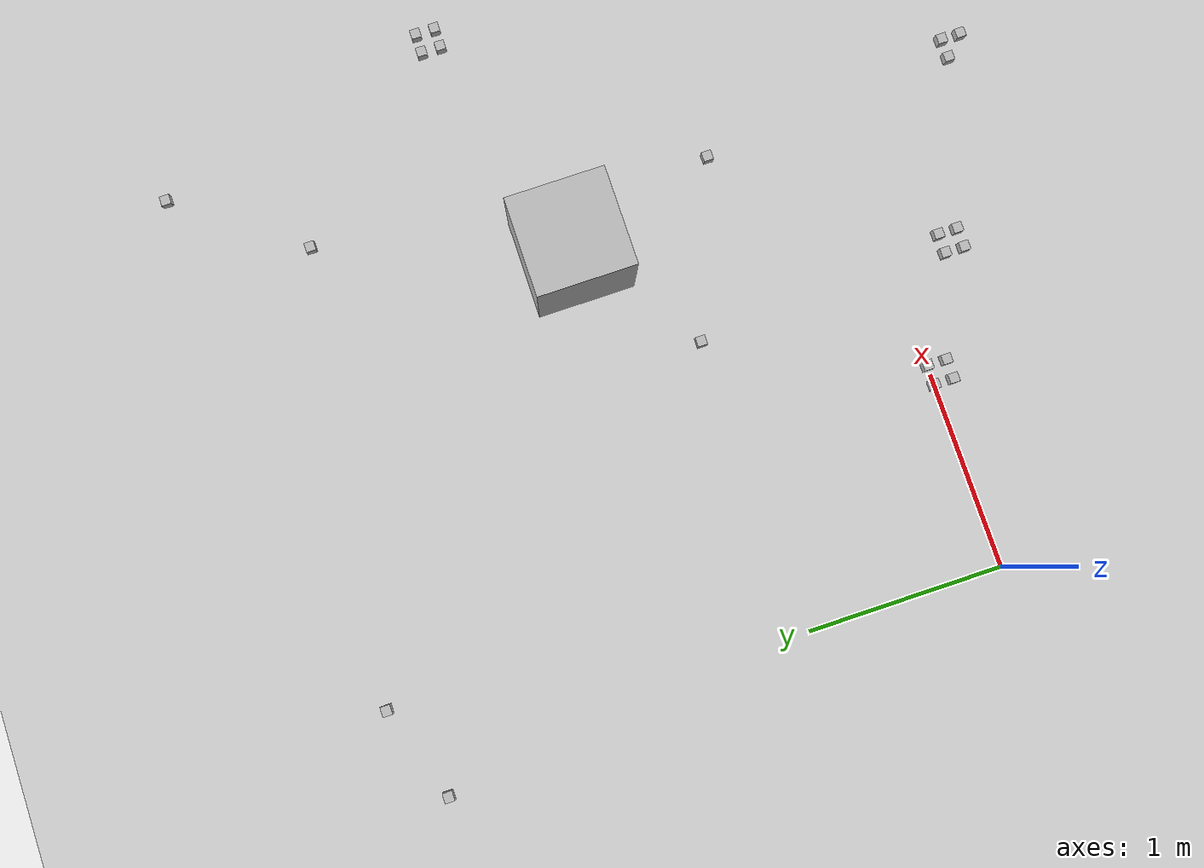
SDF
<sdf version="1.6">
 <world name="default">
  <model name="ground_plane">
   <static>1</static>
   <link name="link">
    <collision name="collision">
     <geometry><plane><normal>0 0 1</normal><size>100 100</size></plane></geometry>
     <surface><friction><ode><mu>100</mu><mu2>50</mu2></ode></friction></surface>
    </collision>
    <visual name="visual">
     <cast_shadows>0</cast_shadows>
     <geometry><plane><normal>0 0 1</normal><size>100 100</size></plane></geometry>
     <material>
      <script><uri>file://media/materials/scripts/gazebo.material</uri><name>Gazebo/Grey</name></script>
     </material>
    </visual>
   </link>
  </model>
  <model name="at68">
   <static>0</static>
   <link name="link">
    <inertial>
     <mass>0.01</mass>
     <inertia><ixx>4e-05</ixx><ixy>0</ixy><ixz>0</ixz><iyy>4e-05</iyy><iyz>0</iyz><izz>4e-05</izz></inertia>
    </inertial>
    <visual name="visual">
     <geometry><box><size>0.05 0.05 0.05</size></box></geometry>
     <material>
      <script>
       <uri>model://at0/materials/scripts</uri>
       <uri>model://at0/materials/textures</uri>
       <name>at0/Diffuse</name>
      </script>
     </material>
    </visual>
    <collision name="collision">
     <geometry><box><size>0.05 0.05 0.05</size></box></geometry>
     <surface><friction><ode><mu>0.8</mu><mu2>0.7</mu2></ode></friction></surface>
    </collision>
   </link>
   <pose>1.55558 -0.37779 0.025 0 -0 0</pose>
  </model>
  <model name="at69">
   <static>0</static>
   <link name="link">
    <inertial>
     <mass>0.01</mass>
     <inertia><ixx>4e-05</ixx><ixy>0</ixy><ixz>0</ixz><iyy>4e-05</iyy><iyz>0</iyz><izz>4e-05</izz></inertia>
    </inertial>
    <visual name="visual">
     <geometry><box><size>0.05 0.05 0.05</size></box></geometry>
     <material>
      <script>
       <uri>model://at0/materials/scripts</uri>
       <uri>model://at0/materials/textures</uri>
       <name>at0/Diffuse</name>
      </script>
     </material>
    </visual>
    <collision name="collision">
     <geometry><box><size>0.05 0.05 0.05</size></box></geometry>
     <surface><friction><ode><mu>0.8</mu><mu2>0.7</mu2></ode></friction></surface>
    </collision>
   </link>
   <pose>1.65558 -0.37779 0.025 0 -0 0</pose>
  </model>
  <model name="at70">
   <static>0</static>
   <link name="link">
    <inertial>
     <mass>0.01</mass>
     <inertia><ixx>4e-05</ixx><ixy>0</ixy><ixz>0</ixz><iyy>4e-05</iyy><iyz>0</iyz><izz>4e-05</izz></inertia>
    </inertial>
    <visual name="visual">
     <geometry><box><size>0.05 0.05 0.05</size></box></geometry>
     <material>
      <script>
       <uri>model://at0/materials/scripts</uri>
       <uri>model://at0/materials/textures</uri>
       <name>at0/Diffuse</name>
      </script>
     </material>
    </visual>
    <collision name="collision">
     <geometry><box><size>0.05 0.05 0.05</size></box></geometry>
     <surface><friction><ode><mu>0.8</mu><mu2>0.7</mu2></ode></friction></surface>
    </collision>
   </link>
   <pose>1.55558 -0.27779 0.025 0 -0 0</pose>
  </model>
  <model name="at71">
   <static>0</static>
   <link name="link">
    <inertial>
     <mass>0.01</mass>
     <inertia><ixx>4e-05</ixx><ixy>0</ixy><ixz>0</ixz><iyy>4e-05</iyy><iyz>0</iyz><izz>4e-05</izz></inertia>
    </inertial>
    <visual name="visual">
     <geometry><box><size>0.05 0.05 0.05</size></box></geometry>
     <material>
      <script>
       <uri>model://at0/materials/scripts</uri>
       <uri>model://at0/materials/textures</uri>
       <name>at0/Diffuse</name>
      </script>
     </material>
    </visual>
    <collision name="collision">
     <geometry><box><size>0.05 0.05 0.05</size></box></geometry>
     <surface><friction><ode><mu>0.8</mu><mu2>0.7</mu2></ode></friction></surface>
    </collision>
   </link>
   <pose>1.65558 -0.27779 0.025 0 -0 0</pose>
  </model>
  <model name="at76">
   <static>0</static>
   <link name="link">
    <inertial>
     <mass>0.01</mass>
     <inertia><ixx>4e-05</ixx><ixy>0</ixy><ixz>0</ixz><iyy>4e-05</iyy><iyz>0</iyz><izz>4e-05</izz></inertia>
    </inertial>
    <visual name="visual">
     <geometry><box><size>0.05 0.05 0.05</size></box></geometry>
     <material>
      <script>
       <uri>model://at0/materials/scripts</uri>
       <uri>model://at0/materials/textures</uri>
       <name>at0/Diffuse</name>
      </script>
     </material>
    </visual>
    <collision name="collision">
     <geometry><box><size>0.05 0.05 0.05</size></box></geometry>
     <surface><friction><ode><mu>0.8</mu><mu2>0.7</mu2></ode></friction></surface>
    </collision>
   </link>
   <pose>0.946509 -0.093806 0.025 0 -0 0</pose>
  </model>
  <model name="at77">
   <static>0</static>
   <link name="link">
    <inertial>
     <mass>0.01</mass>
     <inertia><ixx>4e-05</ixx><ixy>0</ixy><ixz>0</ixz><iyy>4e-05</iyy><iyz>0</iyz><izz>4e-05</izz></inertia>
    </inertial>
    <visual name="visual">
     <geometry><box><size>0.05 0.05 0.05</size></box></geometry>
     <material>
      <script>
       <uri>model://at0/materials/scripts</uri>
       <uri>model://at0/materials/textures</uri>
       <name>at0/Diffuse</name>
      </script>
     </material>
    </visual>
    <collision name="collision">
     <geometry><box><size>0.05 0.05 0.05</size></box></geometry>
     <surface><friction><ode><mu>0.8</mu><mu2>0.7</mu2></ode></friction></surface>
    </collision>
   </link>
   <pose>1.04651 -0.093806 0.025 0 -0 0</pose>
  </model>
  <model name="at78">
   <static>0</static>
   <link name="link">
    <inertial>
     <mass>0.01</mass>
     <inertia><ixx>4e-05</ixx><ixy>0</ixy><ixz>0</ixz><iyy>4e-05</iyy><iyz>0</iyz><izz>4e-05</izz></inertia>
    </inertial>
    <visual name="visual">
     <geometry><box><size>0.05 0.05 0.05</size></box></geometry>
     <material>
      <script>
       <uri>model://at0/materials/scripts</uri>
       <uri>model://at0/materials/textures</uri>
       <name>at0/Diffuse</name>
      </script>
     </material>
    </visual>
    <collision name="collision">
     <geometry><box><size>0.05 0.05 0.05</size></box></geometry>
     <surface><friction><ode><mu>0.8</mu><mu2>0.7</mu2></ode></friction></surface>
    </collision>
   </link>
   <pose>0.946509 0.006194 0.025 0 -0 0</pose>
  </model>
  <model name="at79">
   <static>0</static>
   <link name="link">
    <inertial>
     <mass>0.01</mass>
     <inertia><ixx>4e-05</ixx><ixy>0</ixy><ixz>0</ixz><iyy>4e-05</iyy><iyz>0</iyz><izz>4e-05</izz></inertia>
    </inertial>
    <visual name="visual">
     <geometry><box><size>0.05 0.05 0.05</size></box></geometry>
     <material>
      <script>
       <uri>model://at0/materials/scripts</uri>
       <uri>model://at0/materials/textures</uri>
       <name>at0/Diffuse</name>
      </script>
     </material>
    </visual>
    <collision name="collision">
     <geometry><box><size>0.05 0.05 0.05</size></box></geometry>
     <surface><friction><ode><mu>0.8</mu><mu2>0.7</mu2></ode></friction></surface>
    </collision>
   </link>
   <pose>1.04651 0.006194 0.025 0 -0 0</pose>
  </model>
  <model name="at89">
   <static>0</static>
   <link name="link">
    <inertial>
     <mass>0.01</mass>
     <inertia><ixx>4e-05</ixx><ixy>0</ixy><ixz>0</ixz><iyy>4e-05</iyy><iyz>0</iyz><izz>4e-05</izz></inertia>
    </inertial>
    <visual name="visual">
     <geometry><box><size>0.05 0.05 0.05</size></box></geometry>
     <material>
      <script>
       <uri>model://at0/materials/scripts</uri>
       <uri>model://at0/materials/textures</uri>
       <name>at0/Diffuse</name>
      </script>
     </material>
    </visual>
    <collision name="collision">
     <geometry><box><size>0.05 0.05 0.05</size></box></geometry>
     <surface><friction><ode><mu>0.8</mu><mu2>0.7</mu2></ode></friction></surface>
    </collision>
   </link>
   <pose>2.60878 -0.748782 0.025 0 -0 0</pose>
  </model>
  <model name="at90">
   <static>0</static>
   <link name="link">
    <inertial>
     <mass>0.01</mass>
     <inertia><ixx>4e-05</ixx><ixy>0</ixy><ixz>0</ixz><iyy>4e-05</iyy><iyz>0</iyz><izz>4e-05</izz></inertia>
    </inertial>
    <visual name="visual">
     <geometry><box><size>0.05 0.05 0.05</size></box></geometry>
     <material>
      <script>
       <uri>model://at0/materials/scripts</uri>
       <uri>model://at0/materials/textures</uri>
       <name>at0/Diffuse</name>
      </script>
     </material>
    </visual>
    <collision name="collision">
     <geometry><box><size>0.05 0.05 0.05</size></box></geometry>
     <surface><friction><ode><mu>0.8</mu><mu2>0.7</mu2></ode></friction></surface>
    </collision>
   </link>
   <pose>2.50878 -0.648782 0.025 0 -0 0</pose>
  </model>
  <model name="at91">
   <static>0</static>
   <link name="link">
    <inertial>
     <mass>0.01</mass>
     <inertia><ixx>4e-05</ixx><ixy>0</ixy><ixz>0</ixz><iyy>4e-05</iyy><iyz>0</iyz><izz>4e-05</izz></inertia>
    </inertial>
    <visual name="visual">
     <geometry><box><size>0.05 0.05 0.05</size></box></geometry>
     <material>
      <script>
       <uri>model://at0/materials/scripts</uri>
       <uri>model://at0/materials/textures</uri>
       <name>at0/Diffuse</name>
      </script>
     </material>
    </visual>
    <collision name="collision">
     <geometry><box><size>0.05 0.05 0.05</size></box></geometry>
     <surface><friction><ode><mu>0.8</mu><mu2>0.7</mu2></ode></friction></surface>
    </collision>
   </link>
   <pose>2.60878 -0.648782 0.025 0 -0 0</pose>
  </model>
  <model name="at92">
   <static>0</static>
   <link name="link">
    <inertial>
     <mass>0.01</mass>
     <inertia><ixx>4e-05</ixx><ixy>0</ixy><ixz>0</ixz><iyy>4e-05</iyy><iyz>0</iyz><izz>4e-05</izz></inertia>
    </inertial>
    <visual name="visual">
     <geometry><box><size>0.05 0.05 0.05</size></box></geometry>
     <material>
      <script>
       <uri>model://at0/materials/scripts</uri>
       <uri>model://at0/materials/textures</uri>
       <name>at0/Diffuse</name>
      </script>
     </material>
    </visual>
    <collision name="collision">
     <geometry><box><size>0.05 0.05 0.05</size></box></geometry>
     <surface><friction><ode><mu>0.8</mu><mu2>0.7</mu2></ode></friction></surface>
    </collision>
   </link>
   <pose>3.3859 1.79979 0.025 0 -0 0</pose>
  </model>
  <model name="at93">
   <static>0</static>
   <link name="link">
    <inertial>
     <mass>0.01</mass>
     <inertia><ixx>4e-05</ixx><ixy>0</ixy><ixz>0</ixz><iyy>4e-05</iyy><iyz>0</iyz><izz>4e-05</izz></inertia>
    </inertial>
    <visual name="visual">
     <geometry><box><size>0.05 0.05 0.05</size></box></geometry>
     <material>
      <script>
       <uri>model://at0/materials/scripts</uri>
       <uri>model://at0/materials/textures</uri>
       <name>at0/Diffuse</name>
      </script>
     </material>
    </visual>
    <collision name="collision">
     <geometry><box><size>0.05 0.05 0.05</size></box></geometry>
     <surface><friction><ode><mu>0.8</mu><mu2>0.7</mu2></ode></friction></surface>
    </collision>
   </link>
   <pose>3.4859 1.79979 0.025 0 -0 0</pose>
  </model>
  <model name="at94">
   <static>0</static>
   <link name="link">
    <inertial>
     <mass>0.01</mass>
     <inertia><ixx>4e-05</ixx><ixy>0</ixy><ixz>0</ixz><iyy>4e-05</iyy><iyz>0</iyz><izz>4e-05</izz></inertia>
    </inertial>
    <visual name="visual">
     <geometry><box><size>0.05 0.05 0.05</size></box></geometry>
     <material>
      <script>
       <uri>model://at0/materials/scripts</uri>
       <uri>model://at0/materials/textures</uri>
       <name>at0/Diffuse</name>
      </script>
     </material>
    </visual>
    <collision name="collision">
     <geometry><box><size>0.05 0.05 0.05</size></box></geometry>
     <surface><friction><ode><mu>0.8</mu><mu2>0.7</mu2></ode></friction></surface>
    </collision>
   </link>
   <pose>3.3859 1.89979 0.025 0 -0 0</pose>
  </model>
  <model name="at95">
   <static>0</static>
   <link name="link">
    <inertial>
     <mass>0.01</mass>
     <inertia><ixx>4e-05</ixx><ixy>0</ixy><ixz>0</ixz><iyy>4e-05</iyy><iyz>0</iyz><izz>4e-05</izz></inertia>
    </inertial>
    <visual name="visual">
     <geometry><box><size>0.05 0.05 0.05</size></box></geometry>
     <material>
      <script>
       <uri>model://at0/materials/scripts</uri>
       <uri>model://at0/materials/textures</uri>
       <name>at0/Diffuse</name>
      </script>
     </material>
    </visual>
    <collision name="collision">
     <geometry><box><size>0.05 0.05 0.05</size></box></geometry>
     <surface><friction><ode><mu>0.8</mu><mu2>0.7</mu2></ode></friction></surface>
    </collision>
   </link>
   <pose>3.4859 1.89979 0.025 0 -0 0</pose>
  </model>
  <model name="at97">
   <static>0</static>
   <link name="link">
    <inertial>
     <mass>0.01</mass>
     <inertia><ixx>4e-05</ixx><ixy>0</ixy><ixz>0</ixz><iyy>4e-05</iyy><iyz>0</iyz><izz>4e-05</izz></inertia>
    </inertial>
    <visual name="visual">
     <geometry><box><size>0.05 0.05 0.05</size></box></geometry>
     <material>
      <script>
       <uri>model://at0/materials/scripts</uri>
       <uri>model://at0/materials/textures</uri>
       <name>at0/Diffuse</name>
      </script>
     </material>
    </visual>
    <collision name="collision">
     <geometry><box><size>0.05 0.05 0.05</size></box></geometry>
     <surface><friction><ode><mu>0.8</mu><mu2>0.7</mu2></ode></friction></surface>
    </collision>
   </link>
   <pose>2.40325 0.693389 0.025 0 -0 0</pose>
  </model>
  <model name="at98">
   <static>0</static>
   <link name="link">
    <inertial>
     <mass>0.01</mass>
     <inertia><ixx>4e-05</ixx><ixy>0</ixy><ixz>0</ixz><iyy>4e-05</iyy><iyz>0</iyz><izz>4e-05</izz></inertia>
    </inertial>
    <visual name="visual">
     <geometry><box><size>0.05 0.05 0.05</size></box></geometry>
     <material>
      <script>
       <uri>model://at0/materials/scripts</uri>
       <uri>model://at0/materials/textures</uri>
       <name>at0/Diffuse</name>
      </script>
     </material>
    </visual>
    <collision name="collision">
     <geometry><box><size>0.05 0.05 0.05</size></box></geometry>
     <surface><friction><ode><mu>0.8</mu><mu2>0.7</mu2></ode></friction></surface>
    </collision>
   </link>
   <pose>2.59147 2.73834 0.025 0 -0 0</pose>
  </model>
  <model name="at107">
   <static>0</static>
   <link name="link">
    <inertial>
     <mass>0.01</mass>
     <inertia><ixx>4e-05</ixx><ixy>0</ixy><ixz>0</ixz><iyy>4e-05</iyy><iyz>0</iyz><izz>4e-05</izz></inertia>
    </inertial>
    <visual name="visual">
     <geometry><box><size>0.05 0.05 0.05</size></box></geometry>
     <material>
      <script>
       <uri>model://at0/materials/scripts</uri>
       <uri>model://at0/materials/textures</uri>
       <name>at0/Diffuse</name>
      </script>
     </material>
    </visual>
    <collision name="collision">
     <geometry><box><size>0.05 0.05 0.05</size></box></geometry>
     <surface><friction><ode><mu>0.8</mu><mu2>0.7</mu2></ode></friction></surface>
    </collision>
   </link>
   <pose>1.5168 1.03279 0.025 0 -0 0</pose>
  </model>
  <model name="at110">
   <static>0</static>
   <link name="link">
    <inertial>
     <mass>0.01</mass>
     <inertia><ixx>4e-05</ixx><ixy>0</ixy><ixz>0</ixz><iyy>4e-05</iyy><iyz>0</iyz><izz>4e-05</izz></inertia>
    </inertial>
    <visual name="visual">
     <geometry><box><size>0.05 0.05 0.05</size></box></geometry>
     <material>
      <script>
       <uri>model://at0/materials/scripts</uri>
       <uri>model://at0/materials/textures</uri>
       <name>at0/Diffuse</name>
      </script>
     </material>
    </visual>
    <collision name="collision">
     <geometry><box><size>0.05 0.05 0.05</size></box></geometry>
     <surface><friction><ode><mu>0.8</mu><mu2>0.7</mu2></ode></friction></surface>
    </collision>
   </link>
   <pose>-0.181968 2.89761 0.025 0 -0 0</pose>
  </model>
  <model name="at113">
   <static>0</static>
   <link name="link">
    <inertial>
     <mass>0.01</mass>
     <inertia><ixx>4e-05</ixx><ixy>0</ixy><ixz>0</ixz><iyy>4e-05</iyy><iyz>0</iyz><izz>4e-05</izz></inertia>
    </inertial>
    <visual name="visual">
     <geometry><box><size>0.05 0.05 0.05</size></box></geometry>
     <material>
      <script>
       <uri>model://at0/materials/scripts</uri>
       <uri>model://at0/materials/textures</uri>
       <name>at0/Diffuse</name>
      </script>
     </material>
    </visual>
    <collision name="collision">
     <geometry><box><size>0.05 0.05 0.05</size></box></geometry>
     <surface><friction><ode><mu>0.8</mu><mu2>0.7</mu2></ode></friction></surface>
    </collision>
   </link>
   <pose>3.0508 3.35984 0.025 0 -0 0</pose>
  </model>
  <model name="at114">
   <static>0</static>
   <link name="link">
    <inertial>
     <mass>0.01</mass>
     <inertia><ixx>4e-05</ixx><ixy>0</ixy><ixz>0</ixz><iyy>4e-05</iyy><iyz>0</iyz><izz>4e-05</izz></inertia>
    </inertial>
    <visual name="visual">
     <geometry><box><size>0.05 0.05 0.05</size></box></geometry>
     <material>
      <script>
       <uri>model://at0/materials/scripts</uri>
       <uri>model://at0/materials/textures</uri>
       <name>at0/Diffuse</name>
      </script>
     </material>
    </visual>
    <collision name="collision">
     <geometry><box><size>0.05 0.05 0.05</size></box></geometry>
     <surface><friction><ode><mu>0.8</mu><mu2>0.7</mu2></ode></friction></surface>
    </collision>
   </link>
   <pose>0.296088 3.05833 0.025 0 -0 0</pose>
  </model>
  <model name="box_2">
   <pose>2.14383 1.50699 0.25 0 -0 0</pose>
   <static>1</static>
   <link name="link">
    <inertial>
     <mass>0.01</mass>
     <inertia><ixx>4e-05</ixx><ixy>0</ixy><ixz>0</ixz><iyy>4e-05</iyy><iyz>0</iyz><izz>4e-05</izz></inertia>
    </inertial>
    <visual name="visual">
     <geometry><box><size>0.5 0.5 0.5</size></box></geometry>
     <material>
      <script>
       <uri>model://box/materials/scripts</uri>
       <uri>model://box/materials/textures</uri>
       <name>box/Diffuse</name>
      </script>
     </material>
    </visual>
    <collision name="collision">
     <geometry><box><size>0.5 0.5 0.5</size></box></geometry>
     <surface><friction><ode><mu>0.8</mu><mu2>0.7</mu2></ode></friction></surface>
    </collision>
   </link>
  </model>
 </world>
</sdf>
